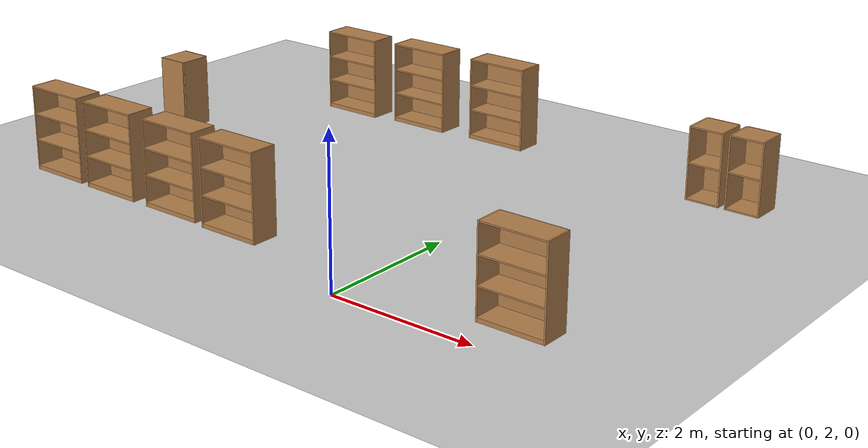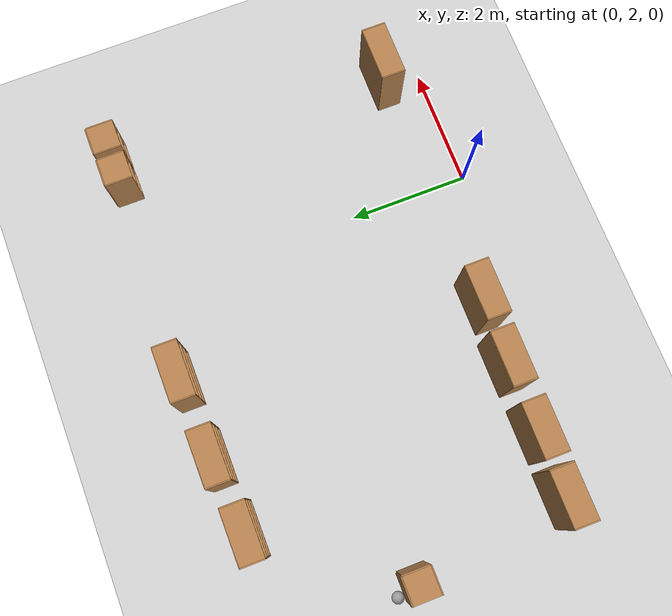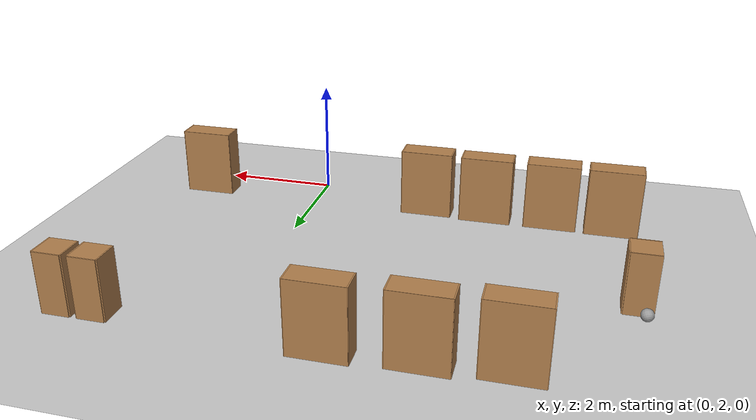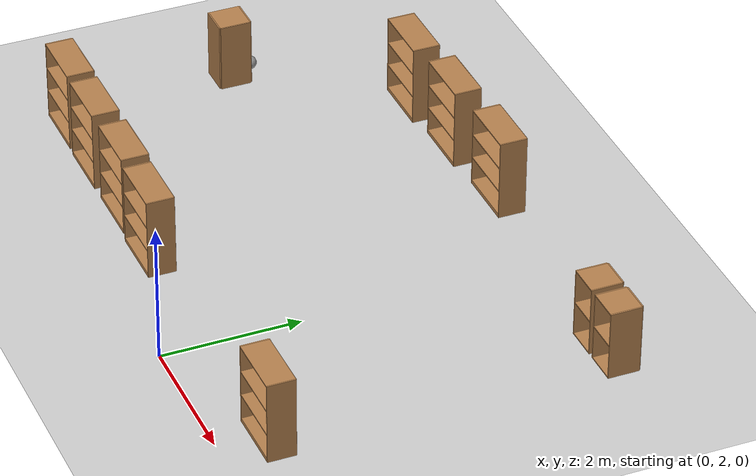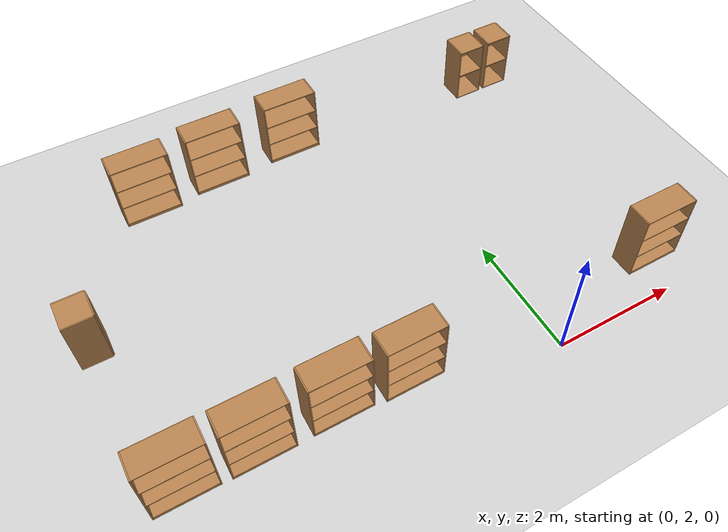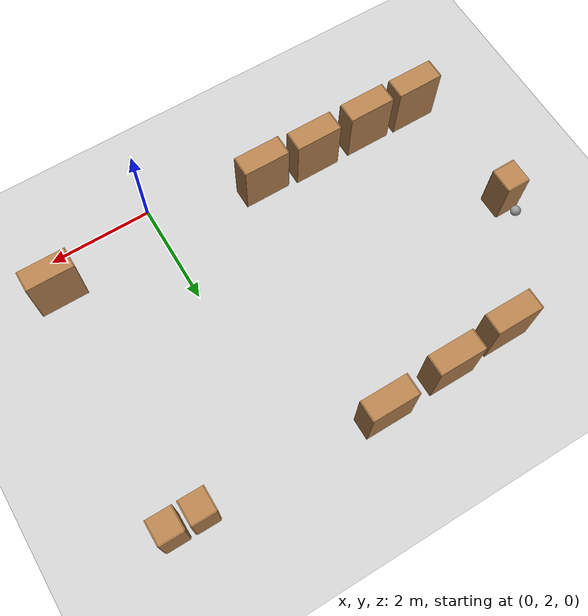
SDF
<sdf version="1.6">
 <world name="default">
  <model name="ground_plane">
   <static>1</static>
   <link name="link">
    <collision name="collision">
     <geometry><plane><normal>0 0 1</normal><size>100 100</size></plane></geometry>
     <surface>
      <contact><collide_bitmask>65535</collide_bitmask></contact>
      <friction><ode><mu>100</mu><mu2>50</mu2></ode></friction>
     </surface>
    </collision>
    <visual name="visual">
     <cast_shadows>0</cast_shadows>
     <geometry><plane><normal>0 0 1</normal><size>100 100</size></plane></geometry>
     <material>
      <script><uri>file://media/materials/scripts/gazebo.material</uri><name>Gazebo/Grey</name></script>
     </material>
    </visual>
   </link>
  </model>
  <model name="bookshelf">
   <static>1</static>
   <link name="link">
    <inertial><mass>1</mass></inertial>
    <collision name="back">
     <pose>0 0.005 0.6 0 -0 0</pose>
     <geometry><box><size>0.9 0.01 1.2</size></box></geometry>
    </collision>
    <visual name="visual1">
     <pose>0 0.005 0.6 0 -0 0</pose>
     <geometry><box><size>0.9 0.01 1.2</size></box></geometry>
     <material>
      <script><uri>file://media/materials/scripts/gazebo.material</uri><name>Gazebo/Wood</name></script>
     </material>
    </visual>
    <collision name="left_side">
     <pose>0.45 -0.195 0.6 0 -0 0</pose>
     <geometry><box><size>0.02 0.4 1.2</size></box></geometry>
    </collision>
    <visual name="visual2">
     <pose>0.45 -0.195 0.6 0 -0 0</pose>
     <geometry><box><size>0.02 0.4 1.2</size></box></geometry>
     <material>
      <script><uri>file://media/materials/scripts/gazebo.material</uri><name>Gazebo/Wood</name></script>
     </material>
    </visual>
    <collision name="right_side">
     <pose>-0.45 -0.195 0.6 0 -0 0</pose>
     <geometry><box><size>0.02 0.4 1.2</size></box></geometry>
    </collision>
    <visual name="visual3">
     <pose>-0.45 -0.195 0.6 0 -0 0</pose>
     <geometry><box><size>0.02 0.4 1.2</size></box></geometry>
     <material>
      <script><uri>file://media/materials/scripts/gazebo.material</uri><name>Gazebo/Wood</name></script>
     </material>
    </visual>
    <collision name="bottom">
     <pose>0 -0.195 0.03 0 -0 0</pose>
     <geometry><box><size>0.88 0.4 0.06</size></box></geometry>
    </collision>
    <visual name="visual4">
     <pose>0 -0.195 0.03 0 -0 0</pose>
     <geometry><box><size>0.88 0.4 0.06</size></box></geometry>
     <material>
      <script><uri>file://media/materials/scripts/gazebo.material</uri><name>Gazebo/Wood</name></script>
     </material>
    </visual>
    <collision name="top">
     <pose>0 -0.195 1.19 0 -0 0</pose>
     <geometry><box><size>0.88 0.4 0.02</size></box></geometry>
    </collision>
    <visual name="visual5">
     <pose>0 -0.195 1.19 0 -0 0</pose>
     <geometry><box><size>0.88 0.4 0.02</size></box></geometry>
     <material>
      <script><uri>file://media/materials/scripts/gazebo.material</uri><name>Gazebo/Wood</name></script>
     </material>
    </visual>
    <collision name="low_shelf">
     <pose>0 -0.195 0.43 0 -0 0</pose>
     <geometry><box><size>0.88 0.4 0.02</size></box></geometry>
    </collision>
    <visual name="visual6">
     <pose>0 -0.195 0.43 0 -0 0</pose>
     <geometry><box><size>0.88 0.4 0.02</size></box></geometry>
     <material>
      <script><uri>file://media/materials/scripts/gazebo.material</uri><name>Gazebo/Wood</name></script>
     </material>
    </visual>
    <collision name="high_shelf">
     <pose>0 -0.195 0.8 0 -0 0</pose>
     <geometry><box><size>0.88 0.4 0.02</size></box></geometry>
    </collision>
    <visual name="visual7">
     <pose>0 -0.195 0.8 0 -0 0</pose>
     <geometry><box><size>0.88 0.4 0.02</size></box></geometry>
     <material>
      <script><uri>file://media/materials/scripts/gazebo.material</uri><name>Gazebo/Wood</name></script>
     </material>
    </visual>
   </link>
   <pose>-5.43016 2.91129 0 0 -0 0</pose>
  </model>
  <model name="cabinet">
   <static>1</static>
   <link name="cabinet_bottom_plate">
    <inertial>
     <pose>0 0 -1 0 -0 0</pose>
     <inertia><ixx>2.05</ixx><ixy>0</ixy><ixz>0</ixz><iyy>2.05</iyy><iyz>0</iyz><izz>2.05</izz></inertia>
     <mass>25</mass>
    </inertial>
    <collision name="cabinet_bottom_plate_geom">
     <pose>0 0 0.01 0 -0 0</pose>
     <geometry><box><size>0.45 0.45 0.02</size></box></geometry>
    </collision>
    <visual name="cabinet_bottom_plate_geom_visual">
     <pose>0 0 0.01 0 -0 0</pose>
     <geometry><box><size>0.45 0.45 0.02</size></box></geometry>
     <material>
      <script><uri>file://media/materials/scripts/gazebo.material</uri><name>Gazebo/Wood</name></script>
     </material>
    </visual>
    <collision name="cabinet_bottom_plate_geom_cabinet_back_plate">
     <pose>0.235 0 0.51 0 -0 0</pose>
     <geometry><box><size>0.02 0.45 1.02</size></box></geometry>
    </collision>
    <visual name="cabinet_bottom_plate_geom_cabinet_back_plate_visual">
     <pose>0.235 0 0.51 0 -0 0</pose>
     <geometry><box><size>0.02 0.45 1.02</size></box></geometry>
     <material>
      <script><uri>file://media/materials/scripts/gazebo.material</uri><name>Gazebo/Wood</name></script>
     </material>
    </visual>
    <collision name="cabinet_bottom_plate_geom_cabinet_left_plate">
     <pose>0 0.235 0.51 0 -0 0</pose>
     <geometry><box><size>0.45 0.02 1.02</size></box></geometry>
    </collision>
    <visual name="cabinet_bottom_plate_geom_cabinet_left_plate_visual">
     <pose>0 0.235 0.51 0 -0 0</pose>
     <geometry><box><size>0.45 0.02 1.02</size></box></geometry>
     <material>
      <script><uri>file://media/materials/scripts/gazebo.material</uri><name>Gazebo/Wood</name></script>
     </material>
    </visual>
    <collision name="cabinet_bottom_plate_geom_cabinet_middle_plate">
     <pose>0 0 0.51 0 -0 0</pose>
     <geometry><box><size>0.45 0.45 0.02</size></box></geometry>
    </collision>
    <visual name="cabinet_bottom_plate_geom_cabinet_middle_plate_visual">
     <pose>0 0 0.51 0 -0 0</pose>
     <geometry><box><size>0.45 0.45 0.02</size></box></geometry>
     <material>
      <script><uri>file://media/materials/scripts/gazebo.material</uri><name>Gazebo/Wood</name></script>
     </material>
    </visual>
    <collision name="cabinet_bottom_plate_geom_cabinet_right_plate">
     <pose>0 -0.235 0.51 0 -0 0</pose>
     <geometry><box><size>0.45 0.02 1.02</size></box></geometry>
    </collision>
    <visual name="cabinet_bottom_plate_geom_cabinet_right_plate_visual">
     <pose>0 -0.235 0.51 0 -0 0</pose>
     <geometry><box><size>0.45 0.02 1.02</size></box></geometry>
     <material>
      <script><uri>file://media/materials/scripts/gazebo.material</uri><name>Gazebo/Wood</name></script>
     </material>
    </visual>
    <collision name="cabinet_bottom_plate_geom_cabinet_top_plate">
     <pose>0 0 1.01 0 -0 0</pose>
     <geometry><box><size>0.45 0.45 0.02</size></box></geometry>
    </collision>
    <visual name="cabinet_bottom_plate_geom_cabinet_top_plate_visual">
     <pose>0 0 1.01 0 -0 0</pose>
     <geometry><box><size>0.45 0.45 0.02</size></box></geometry>
     <material>
      <script><uri>file://media/materials/scripts/gazebo.material</uri><name>Gazebo/Wood</name></script>
     </material>
    </visual>
   </link>
   <pose>-5.82301 5.24681 0 0 -0 0</pose>
  </model>
  <model name="my_ball">
   <link name="link_0">
    <inertial>
     <mass>1</mass>
     <inertia><ixx>0.1</ixx><ixy>0</ixy><ixz>0</ixz><iyy>0.1</iyy><iyz>0</iyz><izz>0.1</izz></inertia>
    </inertial>
    <visual name="visual">
     <geometry><sphere><radius>0.1</radius></sphere></geometry>
     <material>
      <lighting>1</lighting>
      <script><uri>file://media/materials/scripts/gazebo.material</uri><name>Gazebo/Grey</name></script>
      <shader type="pixel"><normal_map>__default__</normal_map></shader>
      <ambient>1 1 1 1</ambient>
      <diffuse>1 1 1 1</diffuse>
      <specular>1 1 1 1</specular>
      <emissive>1 1 1 1</emissive>
     </material>
    </visual>
    <collision name="collision">
     <geometry><sphere><radius>0.1</radius></sphere></geometry>
     <surface>
      <friction>
       <ode><mu>1</mu><mu2>1</mu2><fdir1>0 0 0</fdir1><slip1>0</slip1><slip2>0</slip2></ode>
       <torsional>
        <coefficient>1</coefficient>
        <patch_radius>0</patch_radius>
        <surface_radius>0</surface_radius>
        <use_patch_radius>1</use_patch_radius>
        <ode><slip>0</slip></ode>
       </torsional>
      </friction>
      <bounce><restitution_coefficient>0</restitution_coefficient><threshold>1e+06</threshold></bounce>
      <contact>
       <collide_without_contact>0</collide_without_contact>
       <collide_without_contact_bitmask>1</collide_without_contact_bitmask>
       <collide_bitmask>1</collide_bitmask>
       <ode>
        <soft_cfm>0</soft_cfm>
        <soft_erp>0.2</soft_erp>
        <kp>1e+13</kp>
        <kd>1</kd>
        <max_vel>0.01</max_vel>
        <min_depth>0</min_depth>
       </ode>
       <bullet>
        <split_impulse>1</split_impulse>
        <split_impulse_penetration_threshold>-0.01</split_impulse_penetration_threshold>
        <soft_cfm>0</soft_cfm>
        <soft_erp>0.2</soft_erp>
        <kp>1e+13</kp>
        <kd>1</kd>
       </bullet>
      </contact>
     </surface>
    </collision>
   </link>
   <static>0</static>
   <pose>-5.94046 5.59184 0.1 -0.373632 -0.842459 2.33568</pose>
  </model>
  <model name="bookshelf_clone">
   <static>1</static>
   <link name="link">
    <inertial><mass>1</mass></inertial>
    <collision name="back">
     <pose>0 0.005 0.6 0 -0 0</pose>
     <geometry><box><size>0.9 0.01 1.2</size></box></geometry>
    </collision>
    <visual name="visual1">
     <pose>0 0.005 0.6 0 -0 0</pose>
     <geometry><box><size>0.9 0.01 1.2</size></box></geometry>
     <material>
      <script><uri>file://media/materials/scripts/gazebo.material</uri><name>Gazebo/Wood</name></script>
     </material>
    </visual>
    <collision name="left_side">
     <pose>0.45 -0.195 0.6 0 -0 0</pose>
     <geometry><box><size>0.02 0.4 1.2</size></box></geometry>
    </collision>
    <visual name="visual2">
     <pose>0.45 -0.195 0.6 0 -0 0</pose>
     <geometry><box><size>0.02 0.4 1.2</size></box></geometry>
     <material>
      <script><uri>file://media/materials/scripts/gazebo.material</uri><name>Gazebo/Wood</name></script>
     </material>
    </visual>
    <collision name="right_side">
     <pose>-0.45 -0.195 0.6 0 -0 0</pose>
     <geometry><box><size>0.02 0.4 1.2</size></box></geometry>
    </collision>
    <visual name="visual3">
     <pose>-0.45 -0.195 0.6 0 -0 0</pose>
     <geometry><box><size>0.02 0.4 1.2</size></box></geometry>
     <material>
      <script><uri>file://media/materials/scripts/gazebo.material</uri><name>Gazebo/Wood</name></script>
     </material>
    </visual>
    <collision name="bottom">
     <pose>0 -0.195 0.03 0 -0 0</pose>
     <geometry><box><size>0.88 0.4 0.06</size></box></geometry>
    </collision>
    <visual name="visual4">
     <pose>0 -0.195 0.03 0 -0 0</pose>
     <geometry><box><size>0.88 0.4 0.06</size></box></geometry>
     <material>
      <script><uri>file://media/materials/scripts/gazebo.material</uri><name>Gazebo/Wood</name></script>
     </material>
    </visual>
    <collision name="top">
     <pose>0 -0.195 1.19 0 -0 0</pose>
     <geometry><box><size>0.88 0.4 0.02</size></box></geometry>
    </collision>
    <visual name="visual5">
     <pose>0 -0.195 1.19 0 -0 0</pose>
     <geometry><box><size>0.88 0.4 0.02</size></box></geometry>
     <material>
      <script><uri>file://media/materials/scripts/gazebo.material</uri><name>Gazebo/Wood</name></script>
     </material>
    </visual>
    <collision name="low_shelf">
     <pose>0 -0.195 0.43 0 -0 0</pose>
     <geometry><box><size>0.88 0.4 0.02</size></box></geometry>
    </collision>
    <visual name="visual6">
     <pose>0 -0.195 0.43 0 -0 0</pose>
     <geometry><box><size>0.88 0.4 0.02</size></box></geometry>
     <material>
      <script><uri>file://media/materials/scripts/gazebo.material</uri><name>Gazebo/Wood</name></script>
     </material>
    </visual>
    <collision name="high_shelf">
     <pose>0 -0.195 0.8 0 -0 0</pose>
     <geometry><box><size>0.88 0.4 0.02</size></box></geometry>
    </collision>
    <visual name="visual7">
     <pose>0 -0.195 0.8 0 -0 0</pose>
     <geometry><box><size>0.88 0.4 0.02</size></box></geometry>
     <material>
      <script><uri>file://media/materials/scripts/gazebo.material</uri><name>Gazebo/Wood</name></script>
     </material>
    </visual>
   </link>
   <pose>-4.37438 2.89706 0 0 -0 0</pose>
  </model>
  <model name="bookshelf_clone_0">
   <static>1</static>
   <link name="link">
    <inertial><mass>1</mass></inertial>
    <collision name="back">
     <pose>0 0.005 0.6 0 -0 0</pose>
     <geometry><box><size>0.9 0.01 1.2</size></box></geometry>
    </collision>
    <visual name="visual1">
     <pose>0 0.005 0.6 0 -0 0</pose>
     <geometry><box><size>0.9 0.01 1.2</size></box></geometry>
     <material>
      <script><uri>file://media/materials/scripts/gazebo.material</uri><name>Gazebo/Wood</name></script>
     </material>
    </visual>
    <collision name="left_side">
     <pose>0.45 -0.195 0.6 0 -0 0</pose>
     <geometry><box><size>0.02 0.4 1.2</size></box></geometry>
    </collision>
    <visual name="visual2">
     <pose>0.45 -0.195 0.6 0 -0 0</pose>
     <geometry><box><size>0.02 0.4 1.2</size></box></geometry>
     <material>
      <script><uri>file://media/materials/scripts/gazebo.material</uri><name>Gazebo/Wood</name></script>
     </material>
    </visual>
    <collision name="right_side">
     <pose>-0.45 -0.195 0.6 0 -0 0</pose>
     <geometry><box><size>0.02 0.4 1.2</size></box></geometry>
    </collision>
    <visual name="visual3">
     <pose>-0.45 -0.195 0.6 0 -0 0</pose>
     <geometry><box><size>0.02 0.4 1.2</size></box></geometry>
     <material>
      <script><uri>file://media/materials/scripts/gazebo.material</uri><name>Gazebo/Wood</name></script>
     </material>
    </visual>
    <collision name="bottom">
     <pose>0 -0.195 0.03 0 -0 0</pose>
     <geometry><box><size>0.88 0.4 0.06</size></box></geometry>
    </collision>
    <visual name="visual4">
     <pose>0 -0.195 0.03 0 -0 0</pose>
     <geometry><box><size>0.88 0.4 0.06</size></box></geometry>
     <material>
      <script><uri>file://media/materials/scripts/gazebo.material</uri><name>Gazebo/Wood</name></script>
     </material>
    </visual>
    <collision name="top">
     <pose>0 -0.195 1.19 0 -0 0</pose>
     <geometry><box><size>0.88 0.4 0.02</size></box></geometry>
    </collision>
    <visual name="visual5">
     <pose>0 -0.195 1.19 0 -0 0</pose>
     <geometry><box><size>0.88 0.4 0.02</size></box></geometry>
     <material>
      <script><uri>file://media/materials/scripts/gazebo.material</uri><name>Gazebo/Wood</name></script>
     </material>
    </visual>
    <collision name="low_shelf">
     <pose>0 -0.195 0.43 0 -0 0</pose>
     <geometry><box><size>0.88 0.4 0.02</size></box></geometry>
    </collision>
    <visual name="visual6">
     <pose>0 -0.195 0.43 0 -0 0</pose>
     <geometry><box><size>0.88 0.4 0.02</size></box></geometry>
     <material>
      <script><uri>file://media/materials/scripts/gazebo.material</uri><name>Gazebo/Wood</name></script>
     </material>
    </visual>
    <collision name="high_shelf">
     <pose>0 -0.195 0.8 0 -0 0</pose>
     <geometry><box><size>0.88 0.4 0.02</size></box></geometry>
    </collision>
    <visual name="visual7">
     <pose>0 -0.195 0.8 0 -0 0</pose>
     <geometry><box><size>0.88 0.4 0.02</size></box></geometry>
     <material>
      <script><uri>file://media/materials/scripts/gazebo.material</uri><name>Gazebo/Wood</name></script>
     </material>
    </visual>
   </link>
   <pose>-3.22108 2.90448 0 0 -0 0</pose>
  </model>
  <model name="bookshelf_clone_1">
   <static>1</static>
   <link name="link">
    <inertial><mass>1</mass></inertial>
    <collision name="back">
     <pose>0 0.005 0.6 0 -0 0</pose>
     <geometry><box><size>0.9 0.01 1.2</size></box></geometry>
    </collision>
    <visual name="visual1">
     <pose>0 0.005 0.6 0 -0 0</pose>
     <geometry><box><size>0.9 0.01 1.2</size></box></geometry>
     <material>
      <script><uri>file://media/materials/scripts/gazebo.material</uri><name>Gazebo/Wood</name></script>
     </material>
    </visual>
    <collision name="left_side">
     <pose>0.45 -0.195 0.6 0 -0 0</pose>
     <geometry><box><size>0.02 0.4 1.2</size></box></geometry>
    </collision>
    <visual name="visual2">
     <pose>0.45 -0.195 0.6 0 -0 0</pose>
     <geometry><box><size>0.02 0.4 1.2</size></box></geometry>
     <material>
      <script><uri>file://media/materials/scripts/gazebo.material</uri><name>Gazebo/Wood</name></script>
     </material>
    </visual>
    <collision name="right_side">
     <pose>-0.45 -0.195 0.6 0 -0 0</pose>
     <geometry><box><size>0.02 0.4 1.2</size></box></geometry>
    </collision>
    <visual name="visual3">
     <pose>-0.45 -0.195 0.6 0 -0 0</pose>
     <geometry><box><size>0.02 0.4 1.2</size></box></geometry>
     <material>
      <script><uri>file://media/materials/scripts/gazebo.material</uri><name>Gazebo/Wood</name></script>
     </material>
    </visual>
    <collision name="bottom">
     <pose>0 -0.195 0.03 0 -0 0</pose>
     <geometry><box><size>0.88 0.4 0.06</size></box></geometry>
    </collision>
    <visual name="visual4">
     <pose>0 -0.195 0.03 0 -0 0</pose>
     <geometry><box><size>0.88 0.4 0.06</size></box></geometry>
     <material>
      <script><uri>file://media/materials/scripts/gazebo.material</uri><name>Gazebo/Wood</name></script>
     </material>
    </visual>
    <collision name="top">
     <pose>0 -0.195 1.19 0 -0 0</pose>
     <geometry><box><size>0.88 0.4 0.02</size></box></geometry>
    </collision>
    <visual name="visual5">
     <pose>0 -0.195 1.19 0 -0 0</pose>
     <geometry><box><size>0.88 0.4 0.02</size></box></geometry>
     <material>
      <script><uri>file://media/materials/scripts/gazebo.material</uri><name>Gazebo/Wood</name></script>
     </material>
    </visual>
    <collision name="low_shelf">
     <pose>0 -0.195 0.43 0 -0 0</pose>
     <geometry><box><size>0.88 0.4 0.02</size></box></geometry>
    </collision>
    <visual name="visual6">
     <pose>0 -0.195 0.43 0 -0 0</pose>
     <geometry><box><size>0.88 0.4 0.02</size></box></geometry>
     <material>
      <script><uri>file://media/materials/scripts/gazebo.material</uri><name>Gazebo/Wood</name></script>
     </material>
    </visual>
    <collision name="high_shelf">
     <pose>0 -0.195 0.8 0 -0 0</pose>
     <geometry><box><size>0.88 0.4 0.02</size></box></geometry>
    </collision>
    <visual name="visual7">
     <pose>0 -0.195 0.8 0 -0 0</pose>
     <geometry><box><size>0.88 0.4 0.02</size></box></geometry>
     <material>
      <script><uri>file://media/materials/scripts/gazebo.material</uri><name>Gazebo/Wood</name></script>
     </material>
    </visual>
   </link>
   <pose>-2.14045 2.86293 0 0 -0 0</pose>
  </model>
  <model name="bookshelf_clone_3">
   <static>1</static>
   <link name="link">
    <inertial><mass>1</mass></inertial>
    <collision name="back">
     <pose>0 0.005 0.6 0 -0 0</pose>
     <geometry><box><size>0.9 0.01 1.2</size></box></geometry>
    </collision>
    <visual name="visual1">
     <pose>0 0.005 0.6 0 -0 0</pose>
     <geometry><box><size>0.9 0.01 1.2</size></box></geometry>
     <material>
      <script><uri>file://media/materials/scripts/gazebo.material</uri><name>Gazebo/Wood</name></script>
     </material>
    </visual>
    <collision name="left_side">
     <pose>0.45 -0.195 0.6 0 -0 0</pose>
     <geometry><box><size>0.02 0.4 1.2</size></box></geometry>
    </collision>
    <visual name="visual2">
     <pose>0.45 -0.195 0.6 0 -0 0</pose>
     <geometry><box><size>0.02 0.4 1.2</size></box></geometry>
     <material>
      <script><uri>file://media/materials/scripts/gazebo.material</uri><name>Gazebo/Wood</name></script>
     </material>
    </visual>
    <collision name="right_side">
     <pose>-0.45 -0.195 0.6 0 -0 0</pose>
     <geometry><box><size>0.02 0.4 1.2</size></box></geometry>
    </collision>
    <visual name="visual3">
     <pose>-0.45 -0.195 0.6 0 -0 0</pose>
     <geometry><box><size>0.02 0.4 1.2</size></box></geometry>
     <material>
      <script><uri>file://media/materials/scripts/gazebo.material</uri><name>Gazebo/Wood</name></script>
     </material>
    </visual>
    <collision name="bottom">
     <pose>0 -0.195 0.03 0 -0 0</pose>
     <geometry><box><size>0.88 0.4 0.06</size></box></geometry>
    </collision>
    <visual name="visual4">
     <pose>0 -0.195 0.03 0 -0 0</pose>
     <geometry><box><size>0.88 0.4 0.06</size></box></geometry>
     <material>
      <script><uri>file://media/materials/scripts/gazebo.material</uri><name>Gazebo/Wood</name></script>
     </material>
    </visual>
    <collision name="top">
     <pose>0 -0.195 1.19 0 -0 0</pose>
     <geometry><box><size>0.88 0.4 0.02</size></box></geometry>
    </collision>
    <visual name="visual5">
     <pose>0 -0.195 1.19 0 -0 0</pose>
     <geometry><box><size>0.88 0.4 0.02</size></box></geometry>
     <material>
      <script><uri>file://media/materials/scripts/gazebo.material</uri><name>Gazebo/Wood</name></script>
     </material>
    </visual>
    <collision name="low_shelf">
     <pose>0 -0.195 0.43 0 -0 0</pose>
     <geometry><box><size>0.88 0.4 0.02</size></box></geometry>
    </collision>
    <visual name="visual6">
     <pose>0 -0.195 0.43 0 -0 0</pose>
     <geometry><box><size>0.88 0.4 0.02</size></box></geometry>
     <material>
      <script><uri>file://media/materials/scripts/gazebo.material</uri><name>Gazebo/Wood</name></script>
     </material>
    </visual>
    <collision name="high_shelf">
     <pose>0 -0.195 0.8 0 -0 0</pose>
     <geometry><box><size>0.88 0.4 0.02</size></box></geometry>
    </collision>
    <visual name="visual7">
     <pose>0 -0.195 0.8 0 -0 0</pose>
     <geometry><box><size>0.88 0.4 0.02</size></box></geometry>
     <material>
      <script><uri>file://media/materials/scripts/gazebo.material</uri><name>Gazebo/Wood</name></script>
     </material>
    </visual>
   </link>
   <pose>-1.62647 7.75744 0 0 -0 0</pose>
  </model>
  <model name="bookshelf_clone_4">
   <static>1</static>
   <link name="link">
    <inertial><mass>1</mass></inertial>
    <collision name="back">
     <pose>0 0.005 0.6 0 -0 0</pose>
     <geometry><box><size>0.9 0.01 1.2</size></box></geometry>
    </collision>
    <visual name="visual1">
     <pose>0 0.005 0.6 0 -0 0</pose>
     <geometry><box><size>0.9 0.01 1.2</size></box></geometry>
     <material>
      <script><uri>file://media/materials/scripts/gazebo.material</uri><name>Gazebo/Wood</name></script>
     </material>
    </visual>
    <collision name="left_side">
     <pose>0.45 -0.195 0.6 0 -0 0</pose>
     <geometry><box><size>0.02 0.4 1.2</size></box></geometry>
    </collision>
    <visual name="visual2">
     <pose>0.45 -0.195 0.6 0 -0 0</pose>
     <geometry><box><size>0.02 0.4 1.2</size></box></geometry>
     <material>
      <script><uri>file://media/materials/scripts/gazebo.material</uri><name>Gazebo/Wood</name></script>
     </material>
    </visual>
    <collision name="right_side">
     <pose>-0.45 -0.195 0.6 0 -0 0</pose>
     <geometry><box><size>0.02 0.4 1.2</size></box></geometry>
    </collision>
    <visual name="visual3">
     <pose>-0.45 -0.195 0.6 0 -0 0</pose>
     <geometry><box><size>0.02 0.4 1.2</size></box></geometry>
     <material>
      <script><uri>file://media/materials/scripts/gazebo.material</uri><name>Gazebo/Wood</name></script>
     </material>
    </visual>
    <collision name="bottom">
     <pose>0 -0.195 0.03 0 -0 0</pose>
     <geometry><box><size>0.88 0.4 0.06</size></box></geometry>
    </collision>
    <visual name="visual4">
     <pose>0 -0.195 0.03 0 -0 0</pose>
     <geometry><box><size>0.88 0.4 0.06</size></box></geometry>
     <material>
      <script><uri>file://media/materials/scripts/gazebo.material</uri><name>Gazebo/Wood</name></script>
     </material>
    </visual>
    <collision name="top">
     <pose>0 -0.195 1.19 0 -0 0</pose>
     <geometry><box><size>0.88 0.4 0.02</size></box></geometry>
    </collision>
    <visual name="visual5">
     <pose>0 -0.195 1.19 0 -0 0</pose>
     <geometry><box><size>0.88 0.4 0.02</size></box></geometry>
     <material>
      <script><uri>file://media/materials/scripts/gazebo.material</uri><name>Gazebo/Wood</name></script>
     </material>
    </visual>
    <collision name="low_shelf">
     <pose>0 -0.195 0.43 0 -0 0</pose>
     <geometry><box><size>0.88 0.4 0.02</size></box></geometry>
    </collision>
    <visual name="visual6">
     <pose>0 -0.195 0.43 0 -0 0</pose>
     <geometry><box><size>0.88 0.4 0.02</size></box></geometry>
     <material>
      <script><uri>file://media/materials/scripts/gazebo.material</uri><name>Gazebo/Wood</name></script>
     </material>
    </visual>
    <collision name="high_shelf">
     <pose>0 -0.195 0.8 0 -0 0</pose>
     <geometry><box><size>0.88 0.4 0.02</size></box></geometry>
    </collision>
    <visual name="visual7">
     <pose>0 -0.195 0.8 0 -0 0</pose>
     <geometry><box><size>0.88 0.4 0.02</size></box></geometry>
     <material>
      <script><uri>file://media/materials/scripts/gazebo.material</uri><name>Gazebo/Wood</name></script>
     </material>
    </visual>
   </link>
   <pose>-2.98553 7.68826 0 0 -0 0</pose>
  </model>
  <model name="bookshelf_clone_5">
   <static>1</static>
   <link name="link">
    <inertial><mass>1</mass></inertial>
    <collision name="back">
     <pose>0 0.005 0.6 0 -0 0</pose>
     <geometry><box><size>0.9 0.01 1.2</size></box></geometry>
    </collision>
    <visual name="visual1">
     <pose>0 0.005 0.6 0 -0 0</pose>
     <geometry><box><size>0.9 0.01 1.2</size></box></geometry>
     <material>
      <script><uri>file://media/materials/scripts/gazebo.material</uri><name>Gazebo/Wood</name></script>
     </material>
    </visual>
    <collision name="left_side">
     <pose>0.45 -0.195 0.6 0 -0 0</pose>
     <geometry><box><size>0.02 0.4 1.2</size></box></geometry>
    </collision>
    <visual name="visual2">
     <pose>0.45 -0.195 0.6 0 -0 0</pose>
     <geometry><box><size>0.02 0.4 1.2</size></box></geometry>
     <material>
      <script><uri>file://media/materials/scripts/gazebo.material</uri><name>Gazebo/Wood</name></script>
     </material>
    </visual>
    <collision name="right_side">
     <pose>-0.45 -0.195 0.6 0 -0 0</pose>
     <geometry><box><size>0.02 0.4 1.2</size></box></geometry>
    </collision>
    <visual name="visual3">
     <pose>-0.45 -0.195 0.6 0 -0 0</pose>
     <geometry><box><size>0.02 0.4 1.2</size></box></geometry>
     <material>
      <script><uri>file://media/materials/scripts/gazebo.material</uri><name>Gazebo/Wood</name></script>
     </material>
    </visual>
    <collision name="bottom">
     <pose>0 -0.195 0.03 0 -0 0</pose>
     <geometry><box><size>0.88 0.4 0.06</size></box></geometry>
    </collision>
    <visual name="visual4">
     <pose>0 -0.195 0.03 0 -0 0</pose>
     <geometry><box><size>0.88 0.4 0.06</size></box></geometry>
     <material>
      <script><uri>file://media/materials/scripts/gazebo.material</uri><name>Gazebo/Wood</name></script>
     </material>
    </visual>
    <collision name="top">
     <pose>0 -0.195 1.19 0 -0 0</pose>
     <geometry><box><size>0.88 0.4 0.02</size></box></geometry>
    </collision>
    <visual name="visual5">
     <pose>0 -0.195 1.19 0 -0 0</pose>
     <geometry><box><size>0.88 0.4 0.02</size></box></geometry>
     <material>
      <script><uri>file://media/materials/scripts/gazebo.material</uri><name>Gazebo/Wood</name></script>
     </material>
    </visual>
    <collision name="low_shelf">
     <pose>0 -0.195 0.43 0 -0 0</pose>
     <geometry><box><size>0.88 0.4 0.02</size></box></geometry>
    </collision>
    <visual name="visual6">
     <pose>0 -0.195 0.43 0 -0 0</pose>
     <geometry><box><size>0.88 0.4 0.02</size></box></geometry>
     <material>
      <script><uri>file://media/materials/scripts/gazebo.material</uri><name>Gazebo/Wood</name></script>
     </material>
    </visual>
    <collision name="high_shelf">
     <pose>0 -0.195 0.8 0 -0 0</pose>
     <geometry><box><size>0.88 0.4 0.02</size></box></geometry>
    </collision>
    <visual name="visual7">
     <pose>0 -0.195 0.8 0 -0 0</pose>
     <geometry><box><size>0.88 0.4 0.02</size></box></geometry>
     <material>
      <script><uri>file://media/materials/scripts/gazebo.material</uri><name>Gazebo/Wood</name></script>
     </material>
    </visual>
   </link>
   <pose>-4.21114 7.59583 0 0 -0 0</pose>
  </model>
  <model name="bookshelf_clone_6">
   <static>1</static>
   <link name="link">
    <inertial><mass>1</mass></inertial>
    <collision name="back">
     <pose>0 0.005 0.6 0 -0 0</pose>
     <geometry><box><size>0.9 0.01 1.2</size></box></geometry>
    </collision>
    <visual name="visual1">
     <pose>0 0.005 0.6 0 -0 0</pose>
     <geometry><box><size>0.9 0.01 1.2</size></box></geometry>
     <material>
      <script><uri>file://media/materials/scripts/gazebo.material</uri><name>Gazebo/Wood</name></script>
     </material>
    </visual>
    <collision name="left_side">
     <pose>0.45 -0.195 0.6 0 -0 0</pose>
     <geometry><box><size>0.02 0.4 1.2</size></box></geometry>
    </collision>
    <visual name="visual2">
     <pose>0.45 -0.195 0.6 0 -0 0</pose>
     <geometry><box><size>0.02 0.4 1.2</size></box></geometry>
     <material>
      <script><uri>file://media/materials/scripts/gazebo.material</uri><name>Gazebo/Wood</name></script>
     </material>
    </visual>
    <collision name="right_side">
     <pose>-0.45 -0.195 0.6 0 -0 0</pose>
     <geometry><box><size>0.02 0.4 1.2</size></box></geometry>
    </collision>
    <visual name="visual3">
     <pose>-0.45 -0.195 0.6 0 -0 0</pose>
     <geometry><box><size>0.02 0.4 1.2</size></box></geometry>
     <material>
      <script><uri>file://media/materials/scripts/gazebo.material</uri><name>Gazebo/Wood</name></script>
     </material>
    </visual>
    <collision name="bottom">
     <pose>0 -0.195 0.03 0 -0 0</pose>
     <geometry><box><size>0.88 0.4 0.06</size></box></geometry>
    </collision>
    <visual name="visual4">
     <pose>0 -0.195 0.03 0 -0 0</pose>
     <geometry><box><size>0.88 0.4 0.06</size></box></geometry>
     <material>
      <script><uri>file://media/materials/scripts/gazebo.material</uri><name>Gazebo/Wood</name></script>
     </material>
    </visual>
    <collision name="top">
     <pose>0 -0.195 1.19 0 -0 0</pose>
     <geometry><box><size>0.88 0.4 0.02</size></box></geometry>
    </collision>
    <visual name="visual5">
     <pose>0 -0.195 1.19 0 -0 0</pose>
     <geometry><box><size>0.88 0.4 0.02</size></box></geometry>
     <material>
      <script><uri>file://media/materials/scripts/gazebo.material</uri><name>Gazebo/Wood</name></script>
     </material>
    </visual>
    <collision name="low_shelf">
     <pose>0 -0.195 0.43 0 -0 0</pose>
     <geometry><box><size>0.88 0.4 0.02</size></box></geometry>
    </collision>
    <visual name="visual6">
     <pose>0 -0.195 0.43 0 -0 0</pose>
     <geometry><box><size>0.88 0.4 0.02</size></box></geometry>
     <material>
      <script><uri>file://media/materials/scripts/gazebo.material</uri><name>Gazebo/Wood</name></script>
     </material>
    </visual>
    <collision name="high_shelf">
     <pose>0 -0.195 0.8 0 -0 0</pose>
     <geometry><box><size>0.88 0.4 0.02</size></box></geometry>
    </collision>
    <visual name="visual7">
     <pose>0 -0.195 0.8 0 -0 0</pose>
     <geometry><box><size>0.88 0.4 0.02</size></box></geometry>
     <material>
      <script><uri>file://media/materials/scripts/gazebo.material</uri><name>Gazebo/Wood</name></script>
     </material>
    </visual>
   </link>
   <pose>2.13143 2.8783 0 0 -0 0</pose>
  </model>
  <model name="cabinet_0_clone">
   <static>1</static>
   <link name="cabinet_bottom_plate">
    <inertial>
     <pose>0 0 -1 0 -0 0</pose>
     <inertia><ixx>2.05</ixx><ixy>0</ixy><ixz>0</ixz><iyy>2.05</iyy><iyz>0</iyz><izz>2.05</izz></inertia>
     <mass>25</mass>
    </inertial>
    <collision name="cabinet_bottom_plate_geom">
     <pose>0 0 0.01 0 -0 0</pose>
     <geometry><box><size>0.45 0.45 0.02</size></box></geometry>
    </collision>
    <visual name="cabinet_bottom_plate_geom_visual">
     <pose>0 0 0.01 0 -0 0</pose>
     <geometry><box><size>0.45 0.45 0.02</size></box></geometry>
     <material>
      <script><uri>file://media/materials/scripts/gazebo.material</uri><name>Gazebo/Wood</name></script>
     </material>
    </visual>
    <collision name="cabinet_bottom_plate_geom_cabinet_back_plate">
     <pose>0.235 0 0.51 0 -0 0</pose>
     <geometry><box><size>0.02 0.45 1.02</size></box></geometry>
    </collision>
    <visual name="cabinet_bottom_plate_geom_cabinet_back_plate_visual">
     <pose>0.235 0 0.51 0 -0 0</pose>
     <geometry><box><size>0.02 0.45 1.02</size></box></geometry>
     <material>
      <script><uri>file://media/materials/scripts/gazebo.material</uri><name>Gazebo/Wood</name></script>
     </material>
    </visual>
    <collision name="cabinet_bottom_plate_geom_cabinet_left_plate">
     <pose>0 0.235 0.51 0 -0 0</pose>
     <geometry><box><size>0.45 0.02 1.02</size></box></geometry>
    </collision>
    <visual name="cabinet_bottom_plate_geom_cabinet_left_plate_visual">
     <pose>0 0.235 0.51 0 -0 0</pose>
     <geometry><box><size>0.45 0.02 1.02</size></box></geometry>
     <material>
      <script><uri>file://media/materials/scripts/gazebo.material</uri><name>Gazebo/Wood</name></script>
     </material>
    </visual>
    <collision name="cabinet_bottom_plate_geom_cabinet_middle_plate">
     <pose>0 0 0.51 0 -0 0</pose>
     <geometry><box><size>0.45 0.45 0.02</size></box></geometry>
    </collision>
    <visual name="cabinet_bottom_plate_geom_cabinet_middle_plate_visual">
     <pose>0 0 0.51 0 -0 0</pose>
     <geometry><box><size>0.45 0.45 0.02</size></box></geometry>
     <material>
      <script><uri>file://media/materials/scripts/gazebo.material</uri><name>Gazebo/Wood</name></script>
     </material>
    </visual>
    <collision name="cabinet_bottom_plate_geom_cabinet_right_plate">
     <pose>0 -0.235 0.51 0 -0 0</pose>
     <geometry><box><size>0.45 0.02 1.02</size></box></geometry>
    </collision>
    <visual name="cabinet_bottom_plate_geom_cabinet_right_plate_visual">
     <pose>0 -0.235 0.51 0 -0 0</pose>
     <geometry><box><size>0.45 0.02 1.02</size></box></geometry>
     <material>
      <script><uri>file://media/materials/scripts/gazebo.material</uri><name>Gazebo/Wood</name></script>
     </material>
    </visual>
    <collision name="cabinet_bottom_plate_geom_cabinet_top_plate">
     <pose>0 0 1.01 0 -0 0</pose>
     <geometry><box><size>0.45 0.45 0.02</size></box></geometry>
    </collision>
    <visual name="cabinet_bottom_plate_geom_cabinet_top_plate_visual">
     <pose>0 0 1.01 0 -0 0</pose>
     <geometry><box><size>0.45 0.45 0.02</size></box></geometry>
     <material>
      <script><uri>file://media/materials/scripts/gazebo.material</uri><name>Gazebo/Wood</name></script>
     </material>
    </visual>
   </link>
   <pose>1.83803 7.41036 0 0 -0 1.57053</pose>
  </model>
  <model name="cabinet_0_clone_0">
   <static>1</static>
   <link name="cabinet_bottom_plate">
    <inertial>
     <pose>0 0 -1 0 -0 0</pose>
     <inertia><ixx>2.05</ixx><ixy>0</ixy><ixz>0</ixz><iyy>2.05</iyy><iyz>0</iyz><izz>2.05</izz></inertia>
     <mass>25</mass>
    </inertial>
    <collision name="cabinet_bottom_plate_geom">
     <pose>0 0 0.01 0 -0 0</pose>
     <geometry><box><size>0.45 0.45 0.02</size></box></geometry>
    </collision>
    <visual name="cabinet_bottom_plate_geom_visual">
     <pose>0 0 0.01 0 -0 0</pose>
     <geometry><box><size>0.45 0.45 0.02</size></box></geometry>
     <material>
      <script><uri>file://media/materials/scripts/gazebo.material</uri><name>Gazebo/Wood</name></script>
     </material>
    </visual>
    <collision name="cabinet_bottom_plate_geom_cabinet_back_plate">
     <pose>0.235 0 0.51 0 -0 0</pose>
     <geometry><box><size>0.02 0.45 1.02</size></box></geometry>
    </collision>
    <visual name="cabinet_bottom_plate_geom_cabinet_back_plate_visual">
     <pose>0.235 0 0.51 0 -0 0</pose>
     <geometry><box><size>0.02 0.45 1.02</size></box></geometry>
     <material>
      <script><uri>file://media/materials/scripts/gazebo.material</uri><name>Gazebo/Wood</name></script>
     </material>
    </visual>
    <collision name="cabinet_bottom_plate_geom_cabinet_left_plate">
     <pose>0 0.235 0.51 0 -0 0</pose>
     <geometry><box><size>0.45 0.02 1.02</size></box></geometry>
    </collision>
    <visual name="cabinet_bottom_plate_geom_cabinet_left_plate_visual">
     <pose>0 0.235 0.51 0 -0 0</pose>
     <geometry><box><size>0.45 0.02 1.02</size></box></geometry>
     <material>
      <script><uri>file://media/materials/scripts/gazebo.material</uri><name>Gazebo/Wood</name></script>
     </material>
    </visual>
    <collision name="cabinet_bottom_plate_geom_cabinet_middle_plate">
     <pose>0 0 0.51 0 -0 0</pose>
     <geometry><box><size>0.45 0.45 0.02</size></box></geometry>
    </collision>
    <visual name="cabinet_bottom_plate_geom_cabinet_middle_plate_visual">
     <pose>0 0 0.51 0 -0 0</pose>
     <geometry><box><size>0.45 0.45 0.02</size></box></geometry>
     <material>
      <script><uri>file://media/materials/scripts/gazebo.material</uri><name>Gazebo/Wood</name></script>
     </material>
    </visual>
    <collision name="cabinet_bottom_plate_geom_cabinet_right_plate">
     <pose>0 -0.235 0.51 0 -0 0</pose>
     <geometry><box><size>0.45 0.02 1.02</size></box></geometry>
    </collision>
    <visual name="cabinet_bottom_plate_geom_cabinet_right_plate_visual">
     <pose>0 -0.235 0.51 0 -0 0</pose>
     <geometry><box><size>0.45 0.02 1.02</size></box></geometry>
     <material>
      <script><uri>file://media/materials/scripts/gazebo.material</uri><name>Gazebo/Wood</name></script>
     </material>
    </visual>
    <collision name="cabinet_bottom_plate_geom_cabinet_top_plate">
     <pose>0 0 1.01 0 -0 0</pose>
     <geometry><box><size>0.45 0.45 0.02</size></box></geometry>
    </collision>
    <visual name="cabinet_bottom_plate_geom_cabinet_top_plate_visual">
     <pose>0 0 1.01 0 -0 0</pose>
     <geometry><box><size>0.45 0.45 0.02</size></box></geometry>
     <material>
      <script><uri>file://media/materials/scripts/gazebo.material</uri><name>Gazebo/Wood</name></script>
     </material>
    </visual>
   </link>
   <pose>2.40821 7.41373 0 0 -0 1.57053</pose>
  </model>
 </world>
</sdf>
